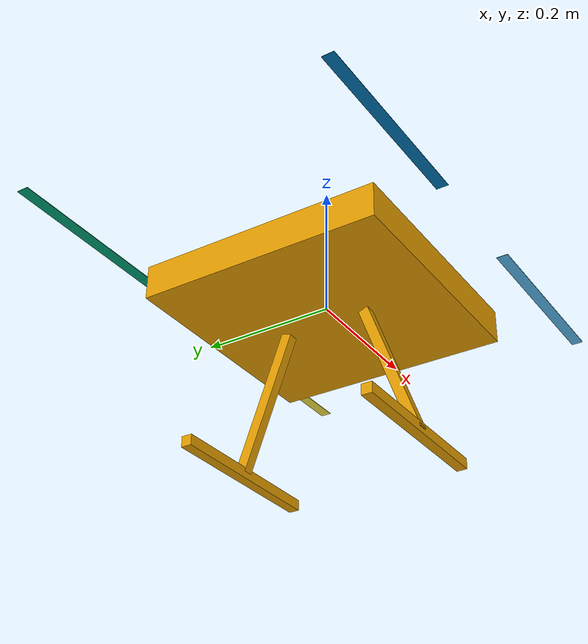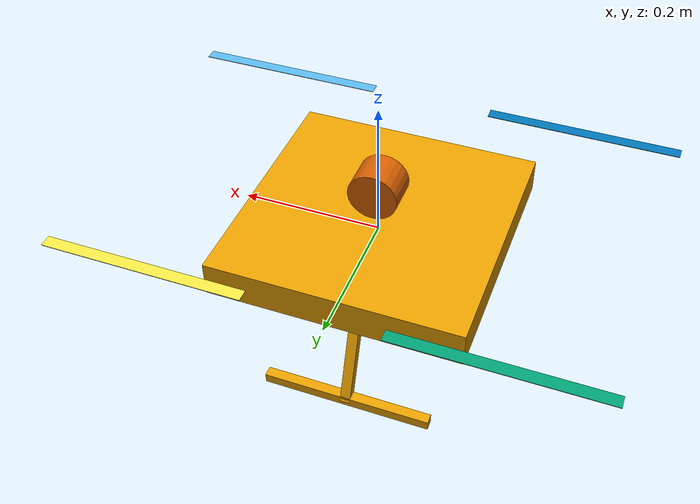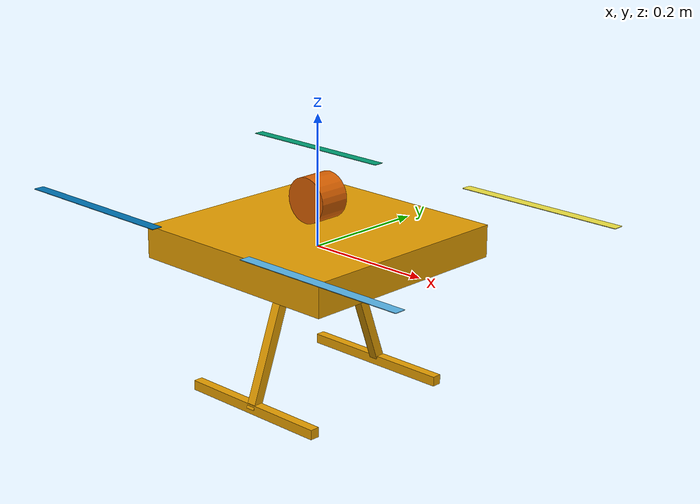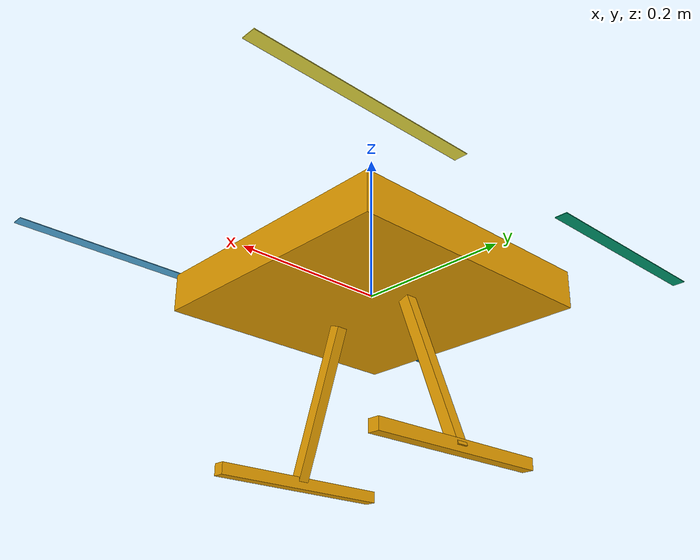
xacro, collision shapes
<?xml version="1.0"?>
<robot name="drone" xmlns:xacro="http://www.ros.org/wiki/xacro">

  <!-- Public args -->
  <xacro:arg name="robot_name" default="match_drohne1"/>
  <xacro:arg name="namespace"  default=""/>
  <xacro:arg name="lidar_parent" default="base_link"/>
  <xacro:arg name="lidar_xyz"    default="0 0 0.075"/>
  <xacro:arg name="lidar_rpy"    default="0 0 0"/>
  <xacro:arg name="lidar_frame"  default="lidar_link"/>
  <xacro:arg name="lidar_topic"  default="/scan"/>
  <xacro:arg name="camera_parent" default="base_link"/>
  <xacro:arg name="camera_xyz"    default="0.12 0 0.10"/>
  <xacro:arg name="camera_rpy"    default="0 0 0"/>
  <xacro:arg name="camera_frame"  default="camera_link"/>
  <xacro:arg name="camera_topic"  default="/camera_out"/>

  <!-- Include submodules -->
  <xacro:include filename="drone_core.xacro"/>
  <xacro:include filename="lidar.xacro"/>
  <xacro:include filename="camera.xacro"/>

  <!-- Instantiate core -->
  <xacro:drone_core
      robot_name="$(arg robot_name)"
      namespace="$(arg namespace)"/>

  <!-- Mount LiDAR -->
  <xacro:lidar_sensor
      parent_link="$(arg lidar_parent)"
      frame_name ="$(arg lidar_frame)"
      xyz="$(arg lidar_xyz)"
      rpy="$(arg lidar_rpy)"
      topic_name="$(arg lidar_topic)"
      mesh_uri="package://match_models/sdf/match_drohne/meshes/livox_mid-360.stl"
      mesh_scale="0.001 0.001 0.001" />  <!-- use 0.001 if STL is in millimeters -->

  <!-- Mount Camera -->

</robot>

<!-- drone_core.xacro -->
<robot name="drone_core" xmlns:xacro="http://www.ros.org/wiki/xacro">
  <!-- Expected params -->
  <xacro:macro name="drone_core" params="robot_name:=match_drohne1 namespace:=">

    <!-- BASE LINK -->
    <link name="base_link">
      <inertial>
        <origin xyz="0 0 0" rpy="0 0 0"/>
        <mass value="2.0"/>
        <inertia
          ixx="0.02166666666666667" ixy="0" ixz="0"
          iyy="0.02166666666666667" iyz="0"  izz="0.04000000000000001"/>
      </inertial>

      <visual name="base_link_visual">
        <origin xyz="0 0 -0.35" rpy="0 0 3.141592654"/>
        <geometry>
          <mesh filename="package://match_models/sdf/match_drohne/meshes/Drohnen-Modell.glb" scale="1 1 1"/>
        </geometry>
      </visual>

      <visual name="5010_motor_base_0">
        <origin xyz="0.23 0.23 0.032" rpy="0 0 -0.45"/>
        <geometry>
          <mesh filename="package://match_slam/description/x500/x500_base/meshes/5010Base.dae" scale="1 1 1"/>
        </geometry>
      </visual>
      <visual name="5010_motor_base_1">
        <origin xyz="-0.23 0.23 0.032" rpy="0 0 -0.45"/>
        <geometry>
          <mesh filename="package://match_slam/description/x500/x500_base/meshes/5010Base.dae" scale="1 1 1"/>
        </geometry>
      </visual>
      <visual name="5010_motor_base_2">
        <origin xyz="0.23 -0.23 0.032" rpy="0 0 -0.45"/>
        <geometry>
          <mesh filename="package://match_slam/description/x500/x500_base/meshes/5010Base.dae" scale="1 1 1"/>
        </geometry>
      </visual>
      <visual name="5010_motor_base_3">
        <origin xyz="-0.23 -0.23 0.032" rpy="0 0 -0.45"/>
        <geometry>
          <mesh filename="package://match_slam/description/x500/x500_base/meshes/5010Base.dae" scale="1 1 1"/>
        </geometry>
      </visual>

      <visual name="NXP_FMUK66_FRONT">
        <origin xyz="0.047 0.001 0.043" rpy="1 0 1.57"/>
        <geometry>
          <box size="0.013 0.007 0.001"/>
        </geometry>
        <material name="nxp_fmuk66_front">
          <texture filename="package://match_slam/description/x500/x500_base/materials/textures/nxp.png"/>
        </material>
      </visual>
      <visual name="NXP_FMUK66_TOP">
        <origin xyz="-0.023 0 0.0515" rpy="0 0 -1.57"/>
        <geometry>
          <box size="0.013 0.007 0.001"/>
        </geometry>
        <material name="nxp_fmuk66_top">
          <texture filename="package://match_slam/description/x500/x500_base/materials/textures/nxp.png"/>
        </material>
      </visual>
      <visual name="RDDRONE_FMUK66_TOP">
        <origin xyz="-0.03 0 0.0515" rpy="0 0 -1.57"/>
        <geometry>
          <box size="0.032 0.0034 0.001"/>
        </geometry>
        <material name="rddrone_fmuk66_top">
          <texture filename="package://match_slam/description/x500/x500_base/materials/textures/rd.png"/>
        </material>
      </visual>

      <collision name="base_link_collision_0">
        <origin xyz="0 0 0.007" rpy="0 0 0"/>
        <geometry>
          <box size="0.35355339059327373 0.35355339059327373 0.05"/>
        </geometry>
      </collision>
      <collision name="base_link_collision_1">
        <origin xyz="0 -0.098 -0.123" rpy="-0.35 0 0"/>
        <geometry>
          <box size="0.015 0.015 0.21"/>
        </geometry>
      </collision>
      <collision name="base_link_collision_2">
        <origin xyz="0 0.098 -0.123" rpy="0.35 0 0"/>
        <geometry>
          <box size="0.015 0.015 0.21"/>
        </geometry>
      </collision>
      <collision name="base_link_collision_3">
        <origin xyz="0 -0.132 -0.2195" rpy="0 0 0"/>
        <geometry>
          <box size="0.25 0.015 0.015"/>
        </geometry>
      </collision>
      <collision name="base_link_collision_4">
        <origin xyz="0 0.132 -0.2195" rpy="0 0 0"/>
        <geometry>
          <box size="0.25 0.015 0.015"/>
        </geometry>
      </collision>
    </link>

    <!-- ROTOR 0 -->
    <link name="rotor_0">
      <inertial>
        <origin xyz="0 0 0" rpy="0 0 0"/>
        <mass value="0.016076923076923075"/>
        <inertia
          ixx="3.8464910483993325e-07" ixy="0" ixz="0"
          iyy="2.6115851691700804e-05" iyz="0" izz="2.649858234714004e-05"/>
      </inertial>
      <visual name="rotor_0_visual">
        <origin xyz="-0.022 -0.14638461538461536 -0.016" rpy="0 0 0"/>
        <geometry>
          <mesh filename="package://match_slam/description/x500/x500_base/meshes/1345_prop_ccw.stl" scale="0.8461538461538461 0.8461538461538461 0.8461538461538461"/>
        </geometry>
      </visual>
      <visual name="rotor_0_visual_motor_bell">
        <origin xyz="0 0 -0.032" rpy="0 0 0"/>
        <geometry>
          <mesh filename="package://match_slam/description/x500/x500_base/meshes/5010Bell.dae" scale="1 1 1"/>
        </geometry>
      </visual>
      <collision name="rotor_0_collision">
        <origin xyz="0 0 0" rpy="0 0 0"/>
        <geometry>
          <box size="0.2792307692307692 0.016923076923076923 0.0008461538461538462"/>
        </geometry>
      </collision>
    </link>
    <joint name="rotor_0_joint" type="continuous">
      <parent link="base_link"/>
      <child link="rotor_0"/>
      <origin xyz="0.23 -0.23 0.06" rpy="0 0 0"/>
      <axis xyz="0 0 1"/>
    </joint>

    <!-- ROTOR 1 -->
    <link name="rotor_1">
      <inertial>
        <origin xyz="0 0 0" rpy="0 0 0"/>
        <mass value="0.016076923076923075"/>
        <inertia
          ixx="3.8464910483993325e-07" ixy="0" ixz="0"
          iyy="2.6115851691700804e-05" iyz="0" izz="2.649858234714004e-05"/>
      </inertial>
      <visual name="rotor_1_visual">
        <origin xyz="-0.022 -0.14638461538461536 -0.016" rpy="0 0 0"/>
        <geometry>
          <mesh filename="package://match_slam/description/x500/x500_base/meshes/1345_prop_ccw.stl" scale="0.8461538461538461 0.8461538461538461 0.8461538461538461"/>
        </geometry>
      </visual>
      <visual name="rotor_1_visual_motor_top">
        <origin xyz="0 0 -0.032" rpy="0 0 0"/>
        <geometry>
          <mesh filename="package://match_slam/description/x500/x500_base/meshes/5010Bell.dae" scale="1 1 1"/>
        </geometry>
      </visual>
      <collision name="rotor_1_collision">
        <origin xyz="0 0 0" rpy="0 0 0"/>
        <geometry>
          <box size="0.2792307692307692 0.016923076923076923 0.0008461538461538462"/>
        </geometry>
      </collision>
    </link>
    <joint name="rotor_1_joint" type="continuous">
      <parent link="base_link"/>
      <child link="rotor_1"/>
      <origin xyz="-0.23 0.23 0.06" rpy="0 0 0"/>
      <axis xyz="0 0 1"/>
    </joint>

    <!-- ROTOR 2 -->
    <link name="rotor_2">
      <inertial>
        <origin xyz="0 0 0" rpy="0 0 0"/>
        <mass value="0.016076923076923075"/>
        <inertia
          ixx="3.8464910483993325e-07" ixy="0" ixz="0"
          iyy="2.6115851691700804e-05" iyz="0" izz="2.649858234714004e-05"/>
      </inertial>
      <visual name="rotor_2_visual">
        <origin xyz="-0.022 -0.14638461538461536 -0.016" rpy="0 0 0"/>
        <geometry>
          <mesh filename="package://match_slam/description/x500/x500_base/meshes/1345_prop_cw.stl" scale="0.8461538461538461 0.8461538461538461 0.8461538461538461"/>
        </geometry>
      </visual>
      <visual name="rotor_2_visual_motor_top">
        <origin xyz="0 0 -0.032" rpy="0 0 0"/>
        <geometry>
          <mesh filename="package://match_slam/description/x500/x500_base/meshes/5010Bell.dae" scale="1 1 1"/>
        </geometry>
      </visual>
      <collision name="rotor_2_collision">
        <origin xyz="0 0 0" rpy="0 0 0"/>
        <geometry>
          <box size="0.2792307692307692 0.016923076923076923 0.0008461538461538462"/>
        </geometry>
      </collision>
    </link>
    <joint name="rotor_2_joint" type="continuous">
      <parent link="base_link"/>
      <child link="rotor_2"/>
      <origin xyz="0.23 0.23 0.06" rpy="0 0 0"/>
      <axis xyz="0 0 1"/>
    </joint>

    <!-- ROTOR 3 -->
    <link name="rotor_3">
      <inertial>
        <origin xyz="0 0 0" rpy="0 0 0"/>
        <mass value="0.016076923076923075"/>
        <inertia
          ixx="3.8464910483993325e-07" ixy="0" ixz="0"
          iyy="2.6115851691700804e-05" iyz="0" izz="2.649858234714004e-05"/>
      </inertial>
      <visual name="rotor_3_visual">
        <origin xyz="-0.022 -0.14638461538461536 -0.016" rpy="0 0 0"/>
        <geometry>
          <mesh filename="package://match_slam/description/x500/x500_base/meshes/1345_prop_cw.stl" scale="0.8461538461538461 0.8461538461538461 0.8461538461538461"/>
        </geometry>
      </visual>
      <visual name="rotor_3_visual_motor_top">
        <origin xyz="0 0 -0.032" rpy="0 0 0"/>
        <geometry>
          <mesh filename="package://match_slam/description/x500/x500_base/meshes/5010Bell.dae" scale="1 1 1"/>
        </geometry>
      </visual>
      <collision name="rotor_3_collision">
        <origin xyz="0 0 0" rpy="0 0 0"/>
        <geometry>
          <box size="0.2792307692307692 0.016923076923076923 0.0008461538461538462"/>
        </geometry>
      </collision>
    </link>
    <joint name="rotor_3_joint" type="continuous">
      <parent link="base_link"/>
      <child link="rotor_3"/>
      <origin xyz="-0.23 -0.23 0.06" rpy="0 0 0"/>
      <axis xyz="0 0 1"/>
    </joint>

  </xacro:macro>
</robot>

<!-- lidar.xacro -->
<robot name="lidar_sensor" xmlns:xacro="http://www.ros.org/wiki/xacro">
  <!-- Expected params -->
  <xacro:macro name="lidar_sensor" params="parent_link frame_name xyz rpy
                                   topic_name:=/scan
                                   mesh_uri:=package://match_models/sdf/match_drohne/meshes/livox_mid-360.stl
                                   mesh_scale:='0.001 0.001 0.001'">

    <!-- LiDAR link + fixed joint to parent -->
    <link name="${frame_name}">
      <inertial>
        <mass value="0.2"/>
        <origin xyz="0 0 0"/>
        <inertia ixx="0.001" iyy="0.001" izz="0.001" ixy="0" ixz="0" iyz="0"/>
      </inertial>

      <!-- Real MID-360 visual -->
      <visual>
        <origin xyz="0 0 0" rpy="${pi/2} 0 ${pi}"/>
        <geometry>
          <mesh filename="${mesh_uri}" scale="${mesh_scale}"/>
        </geometry>
      </visual>

        <!-- Keep physics light: simple collision -->
      <collision>
        <origin xyz="0 0 0" rpy="${pi/2} 0 ${pi}"/>
        <geometry>
          <!-- adjust radius/length to match sensor bounds -->
          <cylinder radius="0.035" length="0.05"/>
        </geometry>
      </collision>

    </link>

    <joint name="${frame_name}_mount" type="fixed">
      <parent link="${parent_link}"/>
      <child  link="${frame_name}"/>
      <origin xyz="${xyz}" rpy="${rpy}"/>
    </joint>

  </xacro:macro>
</robot>
